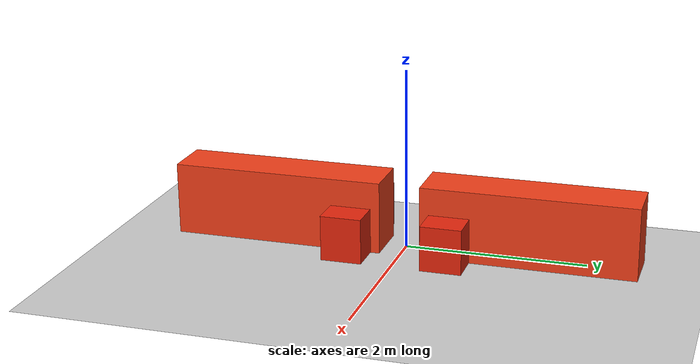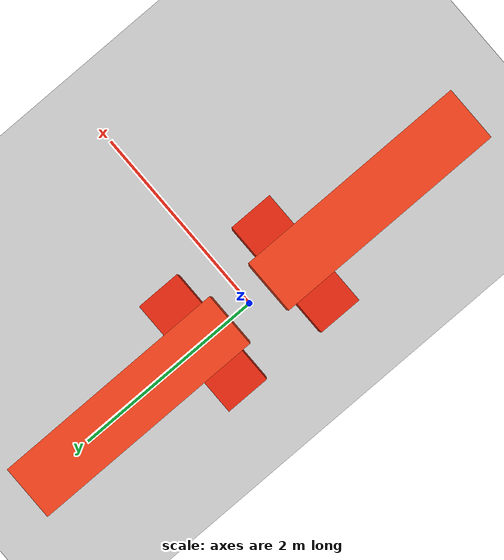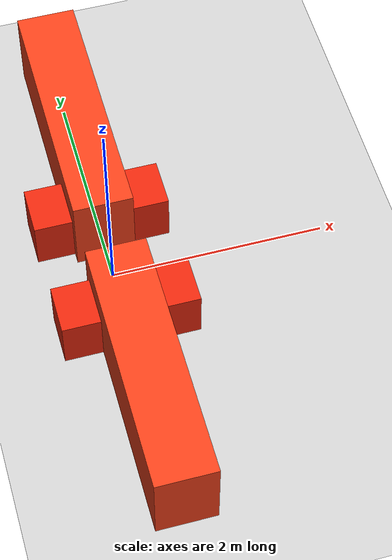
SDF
<sdf version="1.8">
 <world name="default">
  <physics type="ode">
   <real_time_update_rate>1000.0</real_time_update_rate>
   <max_step_size>0.001</max_step_size>
   <real_time_factor>1</real_time_factor>
   <ode>
    <solver>
     <type>quick</type>
     <iters>150</iters>
     <precon_iters>0</precon_iters>
     <sor>1.400000</sor>
     <use_dynamic_moi_rescaling>1</use_dynamic_moi_rescaling>
    </solver>
    <constraints>
     <cfm>0.00001</cfm>
     <erp>0.2</erp>
     <contact_max_correcting_vel>2000.000000</contact_max_correcting_vel>
     <contact_surface_layer>0.01000</contact_surface_layer>
    </constraints>
   </ode>
  </physics>
  <plugin filename="gz-sim-physics-system" name="gz::sim::systems::Physics"/>
  <plugin filename="gz-sim-user-commands-system" name="gz::sim::systems::UserCommands"/>
  <plugin filename="gz-sim-scene-broadcaster-system" name="gz::sim::systems::SceneBroadcaster"/>
  <plugin filename="gz-sim-sensors-system" name="gz::sim::systems::Sensors">
   <render_engine>ogre2</render_engine>
  </plugin>
  <plugin filename="gz-sim-imu-system" name="gz::sim::systems::Imu"/>
  <include><uri>https://fuel.gazebosim.org/1.0/OpenRobotics/models/Ground Plane</uri></include>
  <include><uri>https://fuel.gazebosim.org/1.0/OpenRobotics/models/Sun</uri></include>
  <model name="divider_north">
   <static>true</static>
   <pose>0.000 1.400 0.400 0 0 0.0000</pose>
   <link name="link">
    <collision name="c"><geometry><box><size>0.550 2.350 0.800</size></box></geometry></collision>
    <visual name="v">
     <geometry><box><size>0.550 2.350 0.800</size></box></geometry>
     <material>
      <ambient>0.950 0.250 0.100 1</ambient>
      <diffuse>0.950 0.250 0.100 1</diffuse>
      <specular>0.2 0.2 0.2 1</specular>
     </material>
    </visual>
   </link>
  </model>
  <model name="divider_south">
   <static>true</static>
   <pose>0.000 -1.400 0.400 0 0 0.0000</pose>
   <link name="link">
    <collision name="c"><geometry><box><size>0.550 2.350 0.800</size></box></geometry></collision>
    <visual name="v">
     <geometry><box><size>0.550 2.350 0.800</size></box></geometry>
     <material>
      <ambient>0.950 0.250 0.100 1</ambient>
      <diffuse>0.950 0.250 0.100 1</diffuse>
      <specular>0.2 0.2 0.2 1</specular>
     </material>
    </visual>
   </link>
  </model>
  <model name="flange_n_l">
   <static>true</static>
   <pose>-0.450 0.550 0.250 0 0 0.0000</pose>
   <link name="link">
    <collision name="c"><geometry><box><size>0.350 0.450 0.500</size></box></geometry></collision>
    <visual name="v">
     <geometry><box><size>0.350 0.450 0.500</size></box></geometry>
     <material>
      <ambient>0.900 0.150 0.050 1</ambient>
      <diffuse>0.900 0.150 0.050 1</diffuse>
      <specular>0.2 0.2 0.2 1</specular>
     </material>
    </visual>
   </link>
  </model>
  <model name="flange_n_r">
   <static>true</static>
   <pose>0.450 0.550 0.250 0 0 0.0000</pose>
   <link name="link">
    <collision name="c"><geometry><box><size>0.350 0.450 0.500</size></box></geometry></collision>
    <visual name="v">
     <geometry><box><size>0.350 0.450 0.500</size></box></geometry>
     <material>
      <ambient>0.900 0.150 0.050 1</ambient>
      <diffuse>0.900 0.150 0.050 1</diffuse>
      <specular>0.2 0.2 0.2 1</specular>
     </material>
    </visual>
   </link>
  </model>
  <model name="flange_s_l">
   <static>true</static>
   <pose>-0.450 -0.550 0.250 0 0 0.0000</pose>
   <link name="link">
    <collision name="c"><geometry><box><size>0.350 0.450 0.500</size></box></geometry></collision>
    <visual name="v">
     <geometry><box><size>0.350 0.450 0.500</size></box></geometry>
     <material>
      <ambient>0.900 0.150 0.050 1</ambient>
      <diffuse>0.900 0.150 0.050 1</diffuse>
      <specular>0.2 0.2 0.2 1</specular>
     </material>
    </visual>
   </link>
  </model>
  <model name="flange_s_r">
   <static>true</static>
   <pose>0.450 -0.550 0.250 0 0 0.0000</pose>
   <link name="link">
    <collision name="c"><geometry><box><size>0.350 0.450 0.500</size></box></geometry></collision>
    <visual name="v">
     <geometry><box><size>0.350 0.450 0.500</size></box></geometry>
     <material>
      <ambient>0.900 0.150 0.050 1</ambient>
      <diffuse>0.900 0.150 0.050 1</diffuse>
      <specular>0.2 0.2 0.2 1</specular>
     </material>
    </visual>
   </link>
  </model>
 </world>
</sdf>
